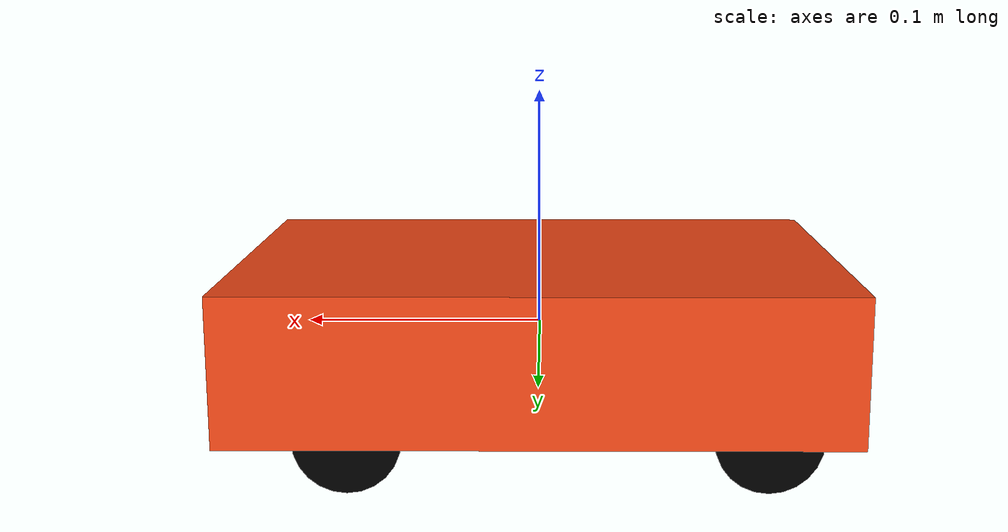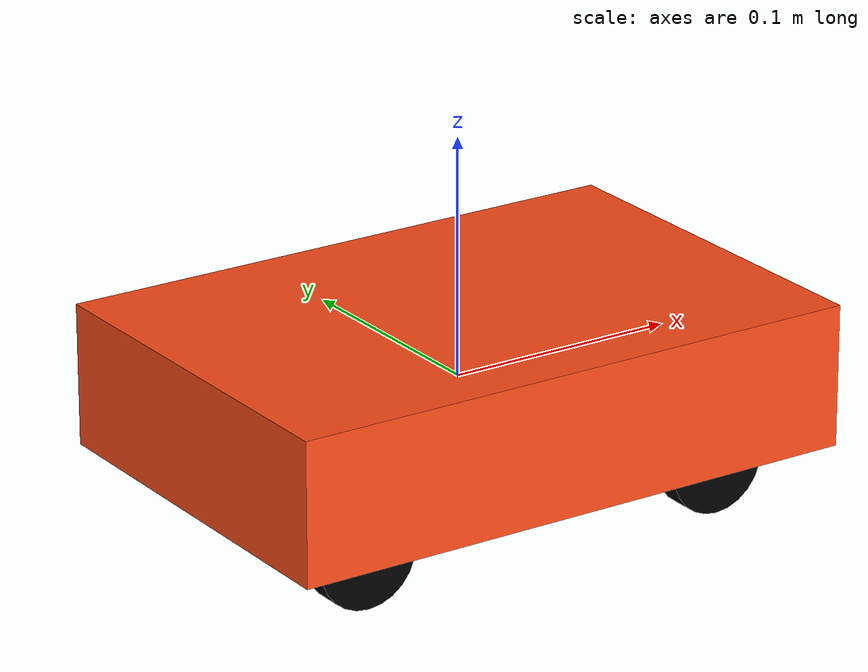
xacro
<?xml version="1.0"?>
<robot xmlns:xacro="http://www.ros.org/wiki/xacro">

    <!-- Include the colors and inertial_macros xacro files -->
    <xacro:include filename="colors.xacro" />
    <xacro:include filename="inertial_macros.xacro" />

    <!-- Chassis properties -->
    <xacro:property name="base_width" value="0.17"/>
    <xacro:property name="base_length" value="0.25"/>
    <xacro:property name="base_height" value="0.06"/>

    <!-- Wheel properties -->
    <xacro:property name="wheel_radius" value="0.0215"/>
    <xacro:property name="wheel_width" value="0.012"/>
    <xacro:property name="wheel_ygap" value="-0.018"/>
    <xacro:property name="wheel_zoff" value="0.03"/>
    <xacro:property name="wheel_xoff" value="0.09"/>

    <link name="base_link">
        <visual>
            <origin xyz="0 0 0" rpy="0 0 0"/>
            <geometry>
                <box size="${base_length} ${base_width} ${base_height}"/>
            </geometry>
            <material name="orange" />
        </visual>

        <collision>
            <origin xyz="0 0 0" rpy="0 0 0"/>
            <geometry>
                <box size="${base_length} ${base_width} ${base_height}"/>
            </geometry>
        </collision>

        <xacro:inertial_box mass="1.3" y="${base_width}" x="${base_length}" z="${base_height}">
            <origin xyz="0 0 0" rpy="0 0 0"/>
        </xacro:inertial_box>
    </link>

    <gazebo reference="base_link">
            <material>Gazebo/Orange</material>
    </gazebo>

    <!-- Wheel Template -->
    <xacro:macro name="front_wheel" params="prefix x_reflect y_reflect">
        <link name="${prefix}_wheel_link">
            <visual>
                <origin xyz="0 0 0" rpy="${pi/2} 0 0"/>
                <geometry>
                    <cylinder radius="${wheel_radius}" length="${wheel_width}"/>
                </geometry>
                <material name="black"/>
            </visual>

            <collision>
                <origin xyz="0 0 0" rpy="${pi/2} 0 0"/>
                <geometry>
                    <cylinder radius="${wheel_radius}" length="${wheel_width}"/>
                </geometry>
            </collision>

            <xacro:inertial_cylinder mass="0.1" radius="${wheel_radius}" length="${wheel_width}">
                <origin xyz="0 0 0" rpy="${pi/2} 0 0"/>
            </xacro:inertial_cylinder>
        </link>

        <joint name="${prefix}_wheel_joint" type="continuous">
            <parent link="${prefix}_steering_link"/>
            <child link="${prefix}_wheel_link"/>
            <origin xyz="0 0 0" rpy="0 0 0"/>
            <axis xyz="0 1 0" rpy="0 0 0"/>
            <limit effort="100" velocity="10"/>
            <dynamics damping="0.1" friction="0.2"/>
        </joint>

        <gazebo reference="${prefix}_wheel_link">
            <material>Gazebo/Black</material>
        </gazebo>
    </xacro:macro>

    <xacro:macro name="rear_wheel" params="prefix x_reflect y_reflect">
        <link name="${prefix}_wheel_link">
            <visual>
                <origin xyz="0 0 0" rpy="${pi/2} 0 0"/>
                <geometry>
                    <cylinder radius="${wheel_radius}" length="${wheel_width}"/>
                </geometry>
                <material name="black"/>
            </visual>

            <collision>
                <origin xyz="0 0 0" rpy="${pi/2} 0 0"/>
                <geometry>
                    <cylinder radius="${wheel_radius}" length="${wheel_width}"/>
                </geometry>
            </collision>

            <xacro:inertial_cylinder mass="0.1" radius="${wheel_radius}" length="${wheel_width}">
                <origin xyz="0 0 0" rpy="${pi/2} 0 0"/>
            </xacro:inertial_cylinder>
        </link>

        <joint name="${prefix}_wheel_joint" type="continuous">
            <parent link="base_link"/>
            <child link="${prefix}_wheel_link"/>
            <origin xyz="${x_reflect*wheel_xoff} ${y_reflect*(base_width/2+wheel_ygap)} ${-wheel_zoff}" rpy="0 0 0"/>
            <axis xyz="0 1 0" rpy="0 0 0"/>
            <limit effort="100" velocity="10"/>
            <dynamics damping="0.1" friction="0.2"/>
        </joint>

        <gazebo reference="${prefix}_wheel_link">
            <material>Gazebo/Black</material>
        </gazebo>
    </xacro:macro>

    <!-- Steering Template -->
    <xacro:macro name="steering" params="prefix x_reflect y_reflect">
        <link name="${prefix}_steering_link">
            <collision>
                <origin xyz="0 0 0" rpy="0 0 0"/>
                <geometry>
                <cylinder radius="0.006" length="0.03"/>
                </geometry>
            </collision>

            <visual>
                <origin xyz="0 0 0" rpy="0 0 0"/>
                <geometry>
                    <cylinder radius="0.006" length="0.03"/>
                </geometry>
                <material name="black"/>
            </visual>

            <xacro:inertial_cylinder mass="0.04" length="0.03" radius="0.006">
                <origin xyz="0 0 0" rpy="0 0 0"/>
            </xacro:inertial_cylinder>
        </link>

        <joint name="${prefix}_steering_joint" type="revolute">
            <parent link="base_link"/>
            <child link="${prefix}_steering_link"/>
            <origin xyz="${x_reflect*base_length/2 -0.05} ${y_reflect*(base_width/2+wheel_ygap)} ${-wheel_zoff}" rpy="0 0 0"/>
            <axis xyz="0 0 1"/>
            <limit lower="-0.6" upper="0.6" velocity="1.0" effort="25"/>
        </joint>
    </xacro:macro>

    <!-- Wheels -->
    <xacro:rear_wheel prefix="left_rear" x_reflect="-1" y_reflect="1" />
    <xacro:rear_wheel prefix="right_rear" x_reflect="-1" y_reflect="-1" />
    <xacro:front_wheel prefix="left_front" x_reflect="1" y_reflect="1" />
    <xacro:front_wheel prefix="right_front" x_reflect="1" y_reflect="-1" />

    <!-- Steering -->
    <xacro:steering prefix="left_front" x_reflect="1" y_reflect="1" />
    <xacro:steering prefix="right_front" x_reflect="1" y_reflect="-1" />

</robot>

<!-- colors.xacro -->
<robot xmlns:xacro="http://www.ros.org/wiki/xacro">

    <material name="grey">
        <color rgba="0.7 0.7 0.7 1"/>
    </material>

    <material name="green">
        <color rgba="0 0.6 0 1"/>
    </material>

    <material name="white">
        <color rgba="1 1 1 1"/>
    </material>

    <material name="black">
        <color rgba="0 0 0 1"/>
    </material>

    <material name="orange">
        <color rgba="1 0.3 0.1 1"/>
    </material>

</robot>
